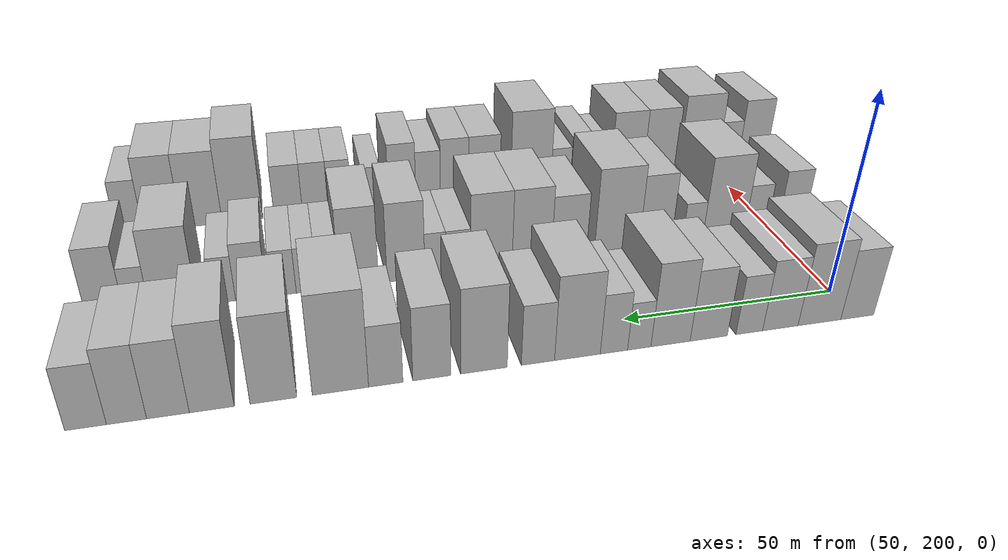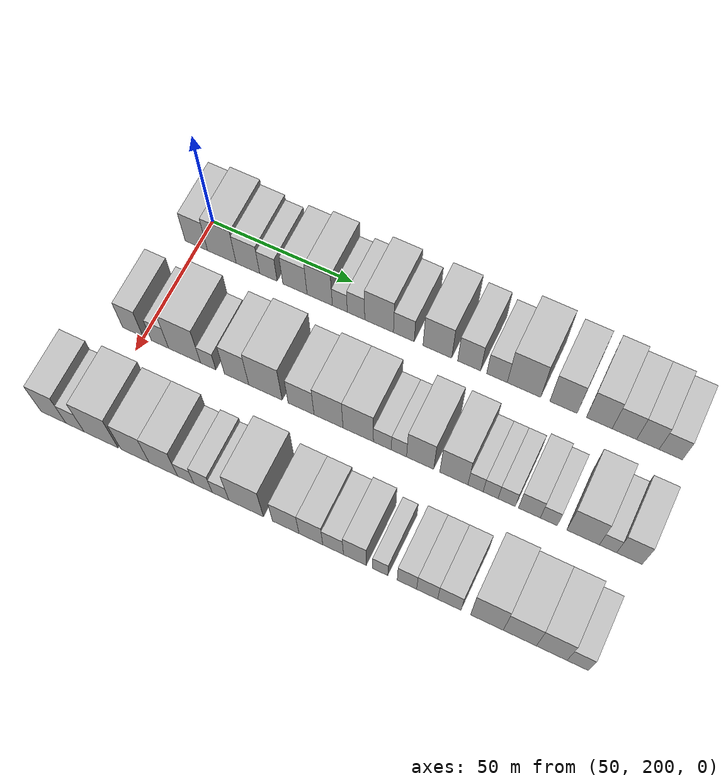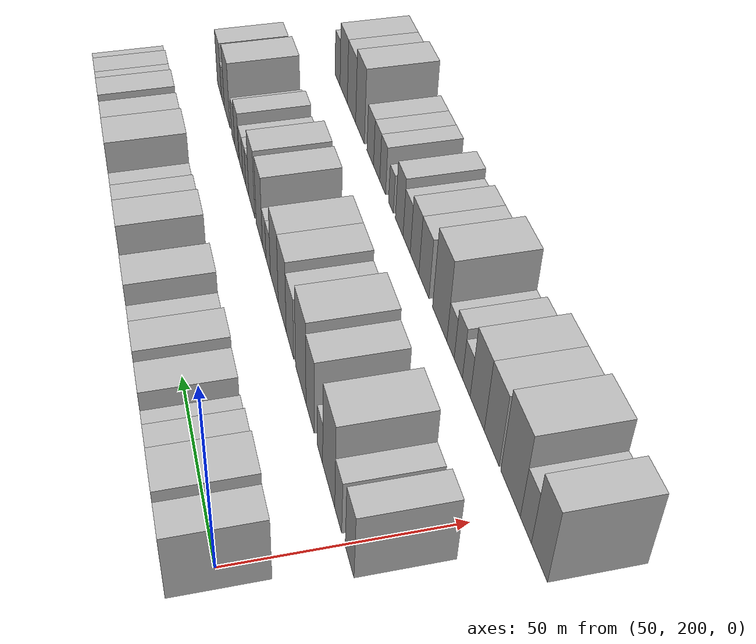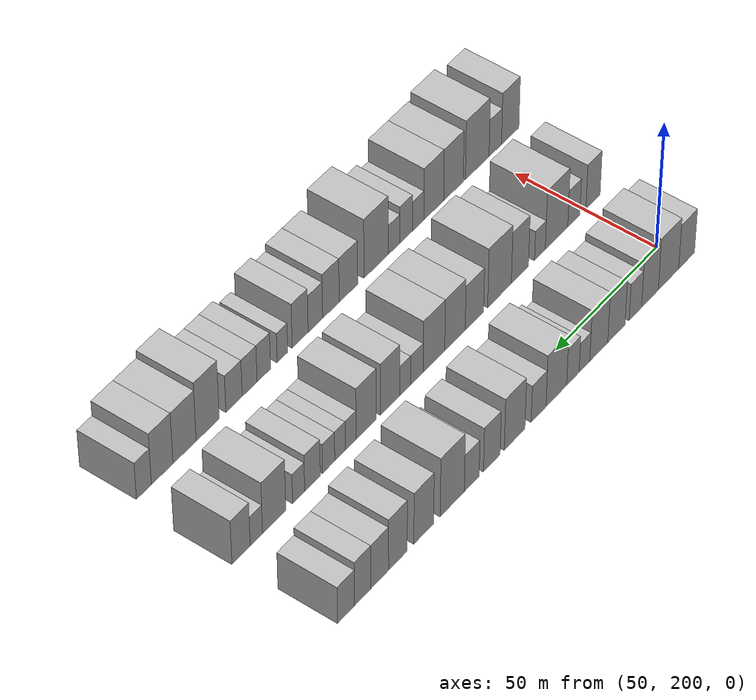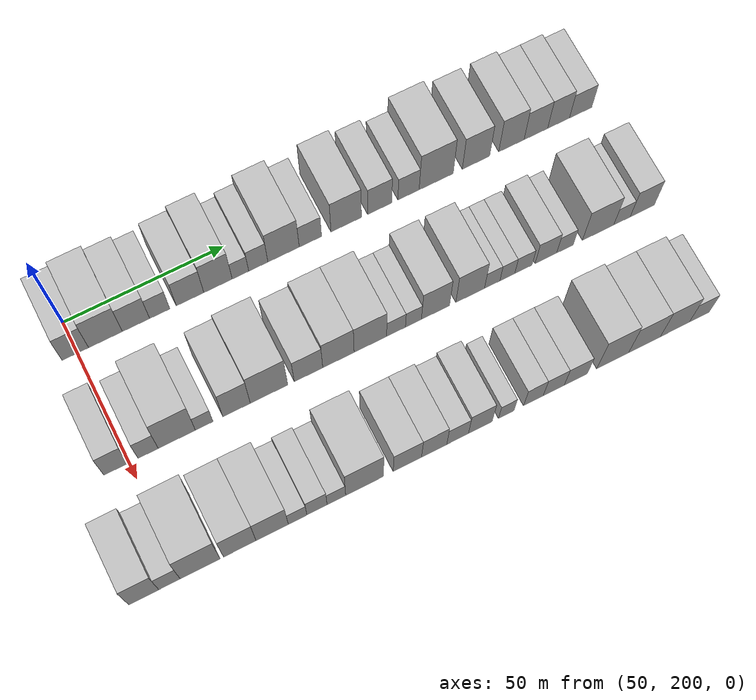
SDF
<sdf version="1.6">
 <world name="default">
  <model name="building_62">
   <static>1</static>
   <pose>50.0000 199.4339 0 0.000000 0.000000 0.000000</pose>
   <link name="link">
    <pose>0 0 9.00 0 0 0</pose>
    <collision name="collision"><geometry><box><size>20.0000 8.0856 18.0000</size></box></geometry></collision>
    <visual name="visual">
     <cast_shadows>0</cast_shadows>
     <geometry><box><size>20.0000 8.0856 18.0000</size></box></geometry>
     <material>
      <script>
       <uri>model://HANNAS_wall/materials/scripts</uri>
       <uri>model://HANNAS_wall/materials/textures</uri>
       <name>vrc/HANNAS_wall</name>
      </script>
     </material>
    </visual>
   </link>
  </model>
  <model name="building_63">
   <static>1</static>
   <pose>50.0000 208.6387 0 0.000000 0.000000 0.000000</pose>
   <link name="link">
    <pose>0 0 10.50 0 0 0</pose>
    <collision name="collision"><geometry><box><size>20.0000 10.3241 21.0000</size></box></geometry></collision>
    <visual name="visual">
     <cast_shadows>0</cast_shadows>
     <geometry><box><size>20.0000 10.3241 21.0000</size></box></geometry>
     <material>
      <script>
       <uri>model://HANNAS_wall/materials/scripts</uri>
       <uri>model://HANNAS_wall/materials/textures</uri>
       <name>vrc/HANNAS_wall</name>
      </script>
     </material>
    </visual>
   </link>
  </model>
  <model name="building_64">
   <static>1</static>
   <pose>50.0000 218.0024 0 0.000000 0.000000 0.000000</pose>
   <link name="link">
    <pose>0 0 9.00 0 0 0</pose>
    <collision name="collision"><geometry><box><size>20.0000 8.4034 18.0000</size></box></geometry></collision>
    <visual name="visual">
     <cast_shadows>0</cast_shadows>
     <geometry><box><size>20.0000 8.4034 18.0000</size></box></geometry>
     <material>
      <script>
       <uri>model://HANNAS_wall/materials/scripts</uri>
       <uri>model://HANNAS_wall/materials/textures</uri>
       <name>vrc/HANNAS_wall</name>
      </script>
     </material>
    </visual>
   </link>
  </model>
  <model name="building_65">
   <static>1</static>
   <pose>50.0000 225.3311 0 0.000000 0.000000 0.000000</pose>
   <link name="link">
    <pose>0 0 7.50 0 0 0</pose>
    <collision name="collision"><geometry><box><size>20.0000 6.2540 15.0000</size></box></geometry></collision>
    <visual name="visual">
     <cast_shadows>0</cast_shadows>
     <geometry><box><size>20.0000 6.2540 15.0000</size></box></geometry>
     <material>
      <script>
       <uri>model://HANNAS_wall/materials/scripts</uri>
       <uri>model://HANNAS_wall/materials/textures</uri>
       <name>vrc/HANNAS_wall</name>
      </script>
     </material>
    </visual>
   </link>
  </model>
  <model name="building_66">
   <static>1</static>
   <pose>50.0000 234.7401 0 0.000000 0.000000 0.000000</pose>
   <link name="link">
    <pose>0 0 9.00 0 0 0</pose>
    <collision name="collision"><geometry><box><size>20.0000 8.5640 18.0000</size></box></geometry></collision>
    <visual name="visual">
     <cast_shadows>0</cast_shadows>
     <geometry><box><size>20.0000 8.5640 18.0000</size></box></geometry>
     <material>
      <script>
       <uri>model://HANNAS_wall/materials/scripts</uri>
       <uri>model://HANNAS_wall/materials/textures</uri>
       <name>vrc/HANNAS_wall</name>
      </script>
     </material>
    </visual>
   </link>
  </model>
  <model name="building_67">
   <static>1</static>
   <pose>50.0000 243.4571 0 0.000000 0.000000 0.000000</pose>
   <link name="link">
    <pose>0 0 10.50 0 0 0</pose>
    <collision name="collision"><geometry><box><size>20.0000 8.8699 21.0000</size></box></geometry></collision>
    <visual name="visual">
     <cast_shadows>0</cast_shadows>
     <geometry><box><size>20.0000 8.8699 21.0000</size></box></geometry>
     <material>
      <script>
       <uri>model://HANNAS_wall/materials/scripts</uri>
       <uri>model://HANNAS_wall/materials/textures</uri>
       <name>vrc/HANNAS_wall</name>
      </script>
     </material>
    </visual>
   </link>
  </model>
  <model name="building_68">
   <static>1</static>
   <pose>50.0000 250.4916 0 0.000000 0.000000 0.000000</pose>
   <link name="link">
    <pose>0 0 6.00 0 0 0</pose>
    <collision name="collision"><geometry><box><size>20.0000 5.1992 12.0000</size></box></geometry></collision>
    <visual name="visual">
     <cast_shadows>0</cast_shadows>
     <geometry><box><size>20.0000 5.1992 12.0000</size></box></geometry>
     <material>
      <script>
       <uri>model://HANNAS_wall/materials/scripts</uri>
       <uri>model://HANNAS_wall/materials/textures</uri>
       <name>vrc/HANNAS_wall</name>
      </script>
     </material>
    </visual>
   </link>
  </model>
  <model name="building_69">
   <static>1</static>
   <pose>50.0000 256.1137 0 0.000000 0.000000 0.000000</pose>
   <link name="link">
    <pose>0 0 7.50 0 0 0</pose>
    <collision name="collision"><geometry><box><size>20.0000 6.0450 15.0000</size></box></geometry></collision>
    <visual name="visual">
     <cast_shadows>0</cast_shadows>
     <geometry><box><size>20.0000 6.0450 15.0000</size></box></geometry>
     <material>
      <script>
       <uri>model://HANNAS_wall/materials/scripts</uri>
       <uri>model://HANNAS_wall/materials/textures</uri>
       <name>vrc/HANNAS_wall</name>
      </script>
     </material>
    </visual>
   </link>
  </model>
  <model name="building_70">
   <static>1</static>
   <pose>50.0000 264.1032 0 0.000000 0.000000 0.000000</pose>
   <link name="link">
    <pose>0 0 10.50 0 0 0</pose>
    <collision name="collision"><geometry><box><size>20.0000 9.9339 21.0000</size></box></geometry></collision>
    <visual name="visual">
     <cast_shadows>0</cast_shadows>
     <geometry><box><size>20.0000 9.9339 21.0000</size></box></geometry>
     <material>
      <script>
       <uri>model://HANNAS_wall/materials/scripts</uri>
       <uri>model://HANNAS_wall/materials/textures</uri>
       <name>vrc/HANNAS_wall</name>
      </script>
     </material>
    </visual>
   </link>
  </model>
  <model name="building_71">
   <static>1</static>
   <pose>50.0000 272.6266 0 0.000000 0.000000 0.000000</pose>
   <link name="link">
    <pose>0 0 7.50 0 0 0</pose>
    <collision name="collision"><geometry><box><size>20.0000 7.1130 15.0000</size></box></geometry></collision>
    <visual name="visual">
     <cast_shadows>0</cast_shadows>
     <geometry><box><size>20.0000 7.1130 15.0000</size></box></geometry>
     <material>
      <script>
       <uri>model://HANNAS_wall/materials/scripts</uri>
       <uri>model://HANNAS_wall/materials/textures</uri>
       <name>vrc/HANNAS_wall</name>
      </script>
     </material>
    </visual>
   </link>
  </model>
  <model name="building_72">
   <static>1</static>
   <pose>50.0000 284.0668 0 0.000000 0.000000 0.000000</pose>
   <link name="link">
    <pose>0 0 10.50 0 0 0</pose>
    <collision name="collision"><geometry><box><size>20.0000 9.7673 21.0000</size></box></geometry></collision>
    <visual name="visual">
     <cast_shadows>0</cast_shadows>
     <geometry><box><size>20.0000 9.7673 21.0000</size></box></geometry>
     <material>
      <script>
       <uri>model://HANNAS_wall/materials/scripts</uri>
       <uri>model://HANNAS_wall/materials/textures</uri>
       <name>vrc/HANNAS_wall</name>
      </script>
     </material>
    </visual>
   </link>
  </model>
  <model name="building_73">
   <static>1</static>
   <pose>50.0000 294.8404 0 0.000000 0.000000 0.000000</pose>
   <link name="link">
    <pose>0 0 9.00 0 0 0</pose>
    <collision name="collision"><geometry><box><size>20.0000 7.7799 18.0000</size></box></geometry></collision>
    <visual name="visual">
     <cast_shadows>0</cast_shadows>
     <geometry><box><size>20.0000 7.7799 18.0000</size></box></geometry>
     <material>
      <script>
       <uri>model://HANNAS_wall/materials/scripts</uri>
       <uri>model://HANNAS_wall/materials/textures</uri>
       <name>vrc/HANNAS_wall</name>
      </script>
     </material>
    </visual>
   </link>
  </model>
  <model name="building_74">
   <static>1</static>
   <pose>50.0000 304.1834 0 0.000000 0.000000 0.000000</pose>
   <link name="link">
    <pose>0 0 7.50 0 0 0</pose>
    <collision name="collision"><geometry><box><size>20.0000 6.9059 15.0000</size></box></geometry></collision>
    <visual name="visual">
     <cast_shadows>0</cast_shadows>
     <geometry><box><size>20.0000 6.9059 15.0000</size></box></geometry>
     <material>
      <script>
       <uri>model://HANNAS_wall/materials/scripts</uri>
       <uri>model://HANNAS_wall/materials/textures</uri>
       <name>vrc/HANNAS_wall</name>
      </script>
     </material>
    </visual>
   </link>
  </model>
  <model name="building_75">
   <static>1</static>
   <pose>50.0000 313.1946 0 0.000000 0.000000 0.000000</pose>
   <link name="link">
    <pose>0 0 12.00 0 0 0</pose>
    <collision name="collision"><geometry><box><size>20.0000 11.1164 24.0000</size></box></geometry></collision>
    <visual name="visual">
     <cast_shadows>0</cast_shadows>
     <geometry><box><size>20.0000 11.1164 24.0000</size></box></geometry>
     <material>
      <script>
       <uri>model://HANNAS_wall/materials/scripts</uri>
       <uri>model://HANNAS_wall/materials/textures</uri>
       <name>vrc/HANNAS_wall</name>
      </script>
     </material>
    </visual>
   </link>
  </model>
  <model name="building_76">
   <static>1</static>
   <pose>50.0000 326.2550 0 0.000000 0.000000 0.000000</pose>
   <link name="link">
    <pose>0 0 10.50 0 0 0</pose>
    <collision name="collision"><geometry><box><size>20.0000 9.0044 21.0000</size></box></geometry></collision>
    <visual name="visual">
     <cast_shadows>0</cast_shadows>
     <geometry><box><size>20.0000 9.0044 21.0000</size></box></geometry>
     <material>
      <script>
       <uri>model://HANNAS_wall/materials/scripts</uri>
       <uri>model://HANNAS_wall/materials/textures</uri>
       <name>vrc/HANNAS_wall</name>
      </script>
     </material>
    </visual>
   </link>
  </model>
  <model name="building_77">
   <static>1</static>
   <pose>50.0000 337.9638 0 0.000000 0.000000 0.000000</pose>
   <link name="link">
    <pose>0 0 10.50 0 0 0</pose>
    <collision name="collision"><geometry><box><size>20.0000 8.4134 21.0000</size></box></geometry></collision>
    <visual name="visual">
     <cast_shadows>0</cast_shadows>
     <geometry><box><size>20.0000 8.4134 21.0000</size></box></geometry>
     <material>
      <script>
       <uri>model://HANNAS_wall/materials/scripts</uri>
       <uri>model://HANNAS_wall/materials/textures</uri>
       <name>vrc/HANNAS_wall</name>
      </script>
     </material>
    </visual>
   </link>
  </model>
  <model name="building_78">
   <static>1</static>
   <pose>50.0000 346.1105 0 0.000000 0.000000 0.000000</pose>
   <link name="link">
    <pose>0 0 9.00 0 0 0</pose>
    <collision name="collision"><geometry><box><size>20.0000 7.8799 18.0000</size></box></geometry></collision>
    <visual name="visual">
     <cast_shadows>0</cast_shadows>
     <geometry><box><size>20.0000 7.8799 18.0000</size></box></geometry>
     <material>
      <script>
       <uri>model://HANNAS_wall/materials/scripts</uri>
       <uri>model://HANNAS_wall/materials/textures</uri>
       <name>vrc/HANNAS_wall</name>
      </script>
     </material>
    </visual>
   </link>
  </model>
  <model name="building_79">
   <static>1</static>
   <pose>50.0000 353.6917 0 0.000000 0.000000 0.000000</pose>
   <link name="link">
    <pose>0 0 9.00 0 0 0</pose>
    <collision name="collision"><geometry><box><size>20.0000 7.2826 18.0000</size></box></geometry></collision>
    <visual name="visual">
     <cast_shadows>0</cast_shadows>
     <geometry><box><size>20.0000 7.2826 18.0000</size></box></geometry>
     <material>
      <script>
       <uri>model://HANNAS_wall/materials/scripts</uri>
       <uri>model://HANNAS_wall/materials/textures</uri>
       <name>vrc/HANNAS_wall</name>
      </script>
     </material>
    </visual>
   </link>
  </model>
  <model name="building_80">
   <static>1</static>
   <pose>50.0000 361.0742 0 0.000000 0.000000 0.000000</pose>
   <link name="link">
    <pose>0 0 7.50 0 0 0</pose>
    <collision name="collision"><geometry><box><size>20.0000 7.4824 15.0000</size></box></geometry></collision>
    <visual name="visual">
     <cast_shadows>0</cast_shadows>
     <geometry><box><size>20.0000 7.4824 15.0000</size></box></geometry>
     <material>
      <script>
       <uri>model://HANNAS_wall/materials/scripts</uri>
       <uri>model://HANNAS_wall/materials/textures</uri>
       <name>vrc/HANNAS_wall</name>
      </script>
     </material>
    </visual>
   </link>
  </model>
  <model name="building_143">
   <static>1</static>
   <pose>85.0000 196.0362 0 0.000000 0.000000 0.000000</pose>
   <link name="link">
    <pose>0 0 9.00 0 0 0</pose>
    <collision name="collision"><geometry><box><size>20.0000 7.2174 18.0000</size></box></geometry></collision>
    <visual name="visual">
     <cast_shadows>0</cast_shadows>
     <geometry><box><size>20.0000 7.2174 18.0000</size></box></geometry>
     <material>
      <script>
       <uri>model://HANNAS_wall/materials/scripts</uri>
       <uri>model://HANNAS_wall/materials/textures</uri>
       <name>vrc/HANNAS_wall</name>
      </script>
     </material>
    </visual>
   </link>
  </model>
  <model name="building_144">
   <static>1</static>
   <pose>85.0000 205.6955 0 0.000000 0.000000 0.000000</pose>
   <link name="link">
    <pose>0 0 7.50 0 0 0</pose>
    <collision name="collision"><geometry><box><size>20.0000 6.1010 15.0000</size></box></geometry></collision>
    <visual name="visual">
     <cast_shadows>0</cast_shadows>
     <geometry><box><size>20.0000 6.1010 15.0000</size></box></geometry>
     <material>
      <script>
       <uri>model://HANNAS_wall/materials/scripts</uri>
       <uri>model://HANNAS_wall/materials/textures</uri>
       <name>vrc/HANNAS_wall</name>
      </script>
     </material>
    </visual>
   </link>
  </model>
  <model name="building_145">
   <static>1</static>
   <pose>85.0000 214.3514 0 0.000000 0.000000 0.000000</pose>
   <link name="link">
    <pose>0 0 12.00 0 0 0</pose>
    <collision name="collision"><geometry><box><size>20.0000 11.2107 24.0000</size></box></geometry></collision>
    <visual name="visual">
     <cast_shadows>0</cast_shadows>
     <geometry><box><size>20.0000 11.2107 24.0000</size></box></geometry>
     <material>
      <script>
       <uri>model://HANNAS_wall/materials/scripts</uri>
       <uri>model://HANNAS_wall/materials/textures</uri>
       <name>vrc/HANNAS_wall</name>
      </script>
     </material>
    </visual>
   </link>
  </model>
  <model name="building_146">
   <static>1</static>
   <pose>85.0000 222.6321 0 0.000000 0.000000 0.000000</pose>
   <link name="link">
    <pose>0 0 6.00 0 0 0</pose>
    <collision name="collision"><geometry><box><size>20.0000 5.3507 12.0000</size></box></geometry></collision>
    <visual name="visual">
     <cast_shadows>0</cast_shadows>
     <geometry><box><size>20.0000 5.3507 12.0000</size></box></geometry>
     <material>
      <script>
       <uri>model://HANNAS_wall/materials/scripts</uri>
       <uri>model://HANNAS_wall/materials/textures</uri>
       <name>vrc/HANNAS_wall</name>
      </script>
     </material>
    </visual>
   </link>
  </model>
  <model name="building_147">
   <static>1</static>
   <pose>85.0000 232.5090 0 0.000000 0.000000 0.000000</pose>
   <link name="link">
    <pose>0 0 10.50 0 0 0</pose>
    <collision name="collision"><geometry><box><size>20.0000 8.4032 21.0000</size></box></geometry></collision>
    <visual name="visual">
     <cast_shadows>0</cast_shadows>
     <geometry><box><size>20.0000 8.4032 21.0000</size></box></geometry>
     <material>
      <script>
       <uri>model://HANNAS_wall/materials/scripts</uri>
       <uri>model://HANNAS_wall/materials/textures</uri>
       <name>vrc/HANNAS_wall</name>
      </script>
     </material>
    </visual>
   </link>
  </model>
  <model name="building_148">
   <static>1</static>
   <pose>85.0000 242.4690 0 0.000000 0.000000 0.000000</pose>
   <link name="link">
    <pose>0 0 12.00 0 0 0</pose>
    <collision name="collision"><geometry><box><size>20.0000 11.5169 24.0000</size></box></geometry></collision>
    <visual name="visual">
     <cast_shadows>0</cast_shadows>
     <geometry><box><size>20.0000 11.5169 24.0000</size></box></geometry>
     <material>
      <script>
       <uri>model://HANNAS_wall/materials/scripts</uri>
       <uri>model://HANNAS_wall/materials/textures</uri>
       <name>vrc/HANNAS_wall</name>
      </script>
     </material>
    </visual>
   </link>
  </model>
  <model name="building_149">
   <static>1</static>
   <pose>85.0000 254.6485 0 0.000000 0.000000 0.000000</pose>
   <link name="link">
    <pose>0 0 9.00 0 0 0</pose>
    <collision name="collision"><geometry><box><size>20.0000 8.8421 18.0000</size></box></geometry></collision>
    <visual name="visual">
     <cast_shadows>0</cast_shadows>
     <geometry><box><size>20.0000 8.8421 18.0000</size></box></geometry>
     <material>
      <script>
       <uri>model://HANNAS_wall/materials/scripts</uri>
       <uri>model://HANNAS_wall/materials/textures</uri>
       <name>vrc/HANNAS_wall</name>
      </script>
     </material>
    </visual>
   </link>
  </model>
  <model name="building_150">
   <static>1</static>
   <pose>85.0000 263.9497 0 0.000000 0.000000 0.000000</pose>
   <link name="link">
    <pose>0 0 10.50 0 0 0</pose>
    <collision name="collision"><geometry><box><size>20.0000 9.7602 21.0000</size></box></geometry></collision>
    <visual name="visual">
     <cast_shadows>0</cast_shadows>
     <geometry><box><size>20.0000 9.7602 21.0000</size></box></geometry>
     <material>
      <script>
       <uri>model://HANNAS_wall/materials/scripts</uri>
       <uri>model://HANNAS_wall/materials/textures</uri>
       <name>vrc/HANNAS_wall</name>
      </script>
     </material>
    </visual>
   </link>
  </model>
  <model name="building_151">
   <static>1</static>
   <pose>85.0000 273.9224 0 0.000000 0.000000 0.000000</pose>
   <link name="link">
    <pose>0 0 10.50 0 0 0</pose>
    <collision name="collision"><geometry><box><size>20.0000 10.1851 21.0000</size></box></geometry></collision>
    <visual name="visual">
     <cast_shadows>0</cast_shadows>
     <geometry><box><size>20.0000 10.1851 21.0000</size></box></geometry>
     <material>
      <script>
       <uri>model://HANNAS_wall/materials/scripts</uri>
       <uri>model://HANNAS_wall/materials/textures</uri>
       <name>vrc/HANNAS_wall</name>
      </script>
     </material>
    </visual>
   </link>
  </model>
  <model name="building_152">
   <static>1</static>
   <pose>85.0000 281.9936 0 0.000000 0.000000 0.000000</pose>
   <link name="link">
    <pose>0 0 6.00 0 0 0</pose>
    <collision name="collision"><geometry><box><size>20.0000 5.9573 12.0000</size></box></geometry></collision>
    <visual name="visual">
     <cast_shadows>0</cast_shadows>
     <geometry><box><size>20.0000 5.9573 12.0000</size></box></geometry>
     <material>
      <script>
       <uri>model://HANNAS_wall/materials/scripts</uri>
       <uri>model://HANNAS_wall/materials/textures</uri>
       <name>vrc/HANNAS_wall</name>
      </script>
     </material>
    </visual>
   </link>
  </model>
  <model name="building_153">
   <static>1</static>
   <pose>85.0000 287.4957 0 0.000000 0.000000 0.000000</pose>
   <link name="link">
    <pose>0 0 6.00 0 0 0</pose>
    <collision name="collision"><geometry><box><size>20.0000 5.0468 12.0000</size></box></geometry></collision>
    <visual name="visual">
     <cast_shadows>0</cast_shadows>
     <geometry><box><size>20.0000 5.0468 12.0000</size></box></geometry>
     <material>
      <script>
       <uri>model://HANNAS_wall/materials/scripts</uri>
       <uri>model://HANNAS_wall/materials/textures</uri>
       <name>vrc/HANNAS_wall</name>
      </script>
     </material>
    </visual>
   </link>
  </model>
  <model name="building_154">
   <static>1</static>
   <pose>85.0000 294.4958 0 0.000000 0.000000 0.000000</pose>
   <link name="link">
    <pose>0 0 10.50 0 0 0</pose>
    <collision name="collision"><geometry><box><size>20.0000 8.9534 21.0000</size></box></geometry></collision>
    <visual name="visual">
     <cast_shadows>0</cast_shadows>
     <geometry><box><size>20.0000 8.9534 21.0000</size></box></geometry>
     <material>
      <script>
       <uri>model://HANNAS_wall/materials/scripts</uri>
       <uri>model://HANNAS_wall/materials/textures</uri>
       <name>vrc/HANNAS_wall</name>
      </script>
     </material>
    </visual>
   </link>
  </model>
  <model name="building_155">
   <static>1</static>
   <pose>85.0000 305.5621 0 0.000000 0.000000 0.000000</pose>
   <link name="link">
    <pose>0 0 10.50 0 0 0</pose>
    <collision name="collision"><geometry><box><size>20.0000 9.1791 21.0000</size></box></geometry></collision>
    <visual name="visual">
     <cast_shadows>0</cast_shadows>
     <geometry><box><size>20.0000 9.1791 21.0000</size></box></geometry>
     <material>
      <script>
       <uri>model://HANNAS_wall/materials/scripts</uri>
       <uri>model://HANNAS_wall/materials/textures</uri>
       <name>vrc/HANNAS_wall</name>
      </script>
     </material>
    </visual>
   </link>
  </model>
  <model name="building_156">
   <static>1</static>
   <pose>85.0000 312.6324 0 0.000000 0.000000 0.000000</pose>
   <link name="link">
    <pose>0 0 6.00 0 0 0</pose>
    <collision name="collision"><geometry><box><size>20.0000 4.9616 12.0000</size></box></geometry></collision>
    <visual name="visual">
     <cast_shadows>0</cast_shadows>
     <geometry><box><size>20.0000 4.9616 12.0000</size></box></geometry>
     <material>
      <script>
       <uri>model://HANNAS_wall/materials/scripts</uri>
       <uri>model://HANNAS_wall/materials/textures</uri>
       <name>vrc/HANNAS_wall</name>
      </script>
     </material>
    </visual>
   </link>
  </model>
  <model name="building_157">
   <static>1</static>
   <pose>85.0000 317.5183 0 0.000000 0.000000 0.000000</pose>
   <link name="link">
    <pose>0 0 6.00 0 0 0</pose>
    <collision name="collision"><geometry><box><size>20.0000 4.8101 12.0000</size></box></geometry></collision>
    <visual name="visual">
     <cast_shadows>0</cast_shadows>
     <geometry><box><size>20.0000 4.8101 12.0000</size></box></geometry>
     <material>
      <script>
       <uri>model://HANNAS_wall/materials/scripts</uri>
       <uri>model://HANNAS_wall/materials/textures</uri>
       <name>vrc/HANNAS_wall</name>
      </script>
     </material>
    </visual>
   </link>
  </model>
  <model name="building_158">
   <static>1</static>
   <pose>85.0000 322.7087 0 0.000000 0.000000 0.000000</pose>
   <link name="link">
    <pose>0 0 6.00 0 0 0</pose>
    <collision name="collision"><geometry><box><size>20.0000 5.5708 12.0000</size></box></geometry></collision>
    <visual name="visual">
     <cast_shadows>0</cast_shadows>
     <geometry><box><size>20.0000 5.5708 12.0000</size></box></geometry>
     <material>
      <script>
       <uri>model://HANNAS_wall/materials/scripts</uri>
       <uri>model://HANNAS_wall/materials/textures</uri>
       <name>vrc/HANNAS_wall</name>
      </script>
     </material>
    </visual>
   </link>
  </model>
  <model name="building_159">
   <static>1</static>
   <pose>85.0000 330.0045 0 0.000000 0.000000 0.000000</pose>
   <link name="link">
    <pose>0 0 7.50 0 0 0</pose>
    <collision name="collision"><geometry><box><size>20.0000 7.0209 15.0000</size></box></geometry></collision>
    <visual name="visual">
     <cast_shadows>0</cast_shadows>
     <geometry><box><size>20.0000 7.0209 15.0000</size></box></geometry>
     <material>
      <script>
       <uri>model://HANNAS_wall/materials/scripts</uri>
       <uri>model://HANNAS_wall/materials/textures</uri>
       <name>vrc/HANNAS_wall</name>
      </script>
     </material>
    </visual>
   </link>
  </model>
  <model name="building_160">
   <static>1</static>
   <pose>85.0000 336.2128 0 0.000000 0.000000 0.000000</pose>
   <link name="link">
    <pose>0 0 6.00 0 0 0</pose>
    <collision name="collision"><geometry><box><size>20.0000 5.3957 12.0000</size></box></geometry></collision>
    <visual name="visual">
     <cast_shadows>0</cast_shadows>
     <geometry><box><size>20.0000 5.3957 12.0000</size></box></geometry>
     <material>
      <script>
       <uri>model://HANNAS_wall/materials/scripts</uri>
       <uri>model://HANNAS_wall/materials/textures</uri>
       <name>vrc/HANNAS_wall</name>
      </script>
     </material>
    </visual>
   </link>
  </model>
  <model name="building_161">
   <static>1</static>
   <pose>85.0000 347.0623 0 0.000000 0.000000 0.000000</pose>
   <link name="link">
    <pose>0 0 10.50 0 0 0</pose>
    <collision name="collision"><geometry><box><size>20.0000 10.3032 21.0000</size></box></geometry></collision>
    <visual name="visual">
     <cast_shadows>0</cast_shadows>
     <geometry><box><size>20.0000 10.3032 21.0000</size></box></geometry>
     <material>
      <script>
       <uri>model://HANNAS_wall/materials/scripts</uri>
       <uri>model://HANNAS_wall/materials/textures</uri>
       <name>vrc/HANNAS_wall</name>
      </script>
     </material>
    </visual>
   </link>
  </model>
  <model name="building_162">
   <static>1</static>
   <pose>85.0000 354.9226 0 0.000000 0.000000 0.000000</pose>
   <link name="link">
    <pose>0 0 6.00 0 0 0</pose>
    <collision name="collision"><geometry><box><size>20.0000 5.4174 12.0000</size></box></geometry></collision>
    <visual name="visual">
     <cast_shadows>0</cast_shadows>
     <geometry><box><size>20.0000 5.4174 12.0000</size></box></geometry>
     <material>
      <script>
       <uri>model://HANNAS_wall/materials/scripts</uri>
       <uri>model://HANNAS_wall/materials/textures</uri>
       <name>vrc/HANNAS_wall</name>
      </script>
     </material>
    </visual>
   </link>
  </model>
  <model name="building_163">
   <static>1</static>
   <pose>85.0000 361.6230 0 0.000000 0.000000 0.000000</pose>
   <link name="link">
    <pose>0 0 9.00 0 0 0</pose>
    <collision name="collision"><geometry><box><size>20.0000 7.9835 18.0000</size></box></geometry></collision>
    <visual name="visual">
     <cast_shadows>0</cast_shadows>
     <geometry><box><size>20.0000 7.9835 18.0000</size></box></geometry>
     <material>
      <script>
       <uri>model://HANNAS_wall/materials/scripts</uri>
       <uri>model://HANNAS_wall/materials/textures</uri>
       <name>vrc/HANNAS_wall</name>
      </script>
     </material>
    </visual>
   </link>
  </model>
  <model name="building_223">
   <static>1</static>
   <pose>120.0000 188.3859 0 0.000000 0.000000 0.000000</pose>
   <link name="link">
    <pose>0 0 10.50 0 0 0</pose>
    <collision name="collision"><geometry><box><size>20.0000 8.7671 21.0000</size></box></geometry></collision>
    <visual name="visual">
     <cast_shadows>0</cast_shadows>
     <geometry><box><size>20.0000 8.7671 21.0000</size></box></geometry>
     <material>
      <script>
       <uri>model://HANNAS_wall/materials/scripts</uri>
       <uri>model://HANNAS_wall/materials/textures</uri>
       <name>vrc/HANNAS_wall</name>
      </script>
     </material>
    </visual>
   </link>
  </model>
  <model name="building_224">
   <static>1</static>
   <pose>120.0000 195.9147 0 0.000000 0.000000 0.000000</pose>
   <link name="link">
    <pose>0 0 7.50 0 0 0</pose>
    <collision name="collision"><geometry><box><size>20.0000 6.2905 15.0000</size></box></geometry></collision>
    <visual name="visual">
     <cast_shadows>0</cast_shadows>
     <geometry><box><size>20.0000 6.2905 15.0000</size></box></geometry>
     <material>
      <script>
       <uri>model://HANNAS_wall/materials/scripts</uri>
       <uri>model://HANNAS_wall/materials/textures</uri>
       <name>vrc/HANNAS_wall</name>
      </script>
     </material>
    </visual>
   </link>
  </model>
  <model name="building_225">
   <static>1</static>
   <pose>120.0000 204.9559 0 0.000000 0.000000 0.000000</pose>
   <link name="link">
    <pose>0 0 12.00 0 0 0</pose>
    <collision name="collision"><geometry><box><size>20.0000 11.7918 24.0000</size></box></geometry></collision>
    <visual name="visual">
     <cast_shadows>0</cast_shadows>
     <geometry><box><size>20.0000 11.7918 24.0000</size></box></geometry>
     <material>
      <script>
       <uri>model://HANNAS_wall/materials/scripts</uri>
       <uri>model://HANNAS_wall/materials/textures</uri>
       <name>vrc/HANNAS_wall</name>
      </script>
     </material>
    </visual>
   </link>
  </model>
  <model name="building_226">
   <static>1</static>
   <pose>120.0000 216.6866 0 0.000000 0.000000 0.000000</pose>
   <link name="link">
    <pose>0 0 10.50 0 0 0</pose>
    <collision name="collision"><geometry><box><size>20.0000 9.6697 21.0000</size></box></geometry></collision>
    <visual name="visual">
     <cast_shadows>0</cast_shadows>
     <geometry><box><size>20.0000 9.6697 21.0000</size></box></geometry>
     <material>
      <script>
       <uri>model://HANNAS_wall/materials/scripts</uri>
       <uri>model://HANNAS_wall/materials/textures</uri>
       <name>vrc/HANNAS_wall</name>
      </script>
     </material>
    </visual>
   </link>
  </model>
  <model name="building_227">
   <static>1</static>
   <pose>120.0000 226.3587 0 0.000000 0.000000 0.000000</pose>
   <link name="link">
    <pose>0 0 10.50 0 0 0</pose>
    <collision name="collision"><geometry><box><size>20.0000 9.6745 21.0000</size></box></geometry></collision>
    <visual name="visual">
     <cast_shadows>0</cast_shadows>
     <geometry><box><size>20.0000 9.6745 21.0000</size></box></geometry>
     <material>
      <script>
       <uri>model://HANNAS_wall/materials/scripts</uri>
       <uri>model://HANNAS_wall/materials/textures</uri>
       <name>vrc/HANNAS_wall</name>
      </script>
     </material>
    </visual>
   </link>
  </model>
  <model name="building_228">
   <static>1</static>
   <pose>120.0000 233.9906 0 0.000000 0.000000 0.000000</pose>
   <link name="link">
    <pose>0 0 6.00 0 0 0</pose>
    <collision name="collision"><geometry><box><size>20.0000 5.5893 12.0000</size></box></geometry></collision>
    <visual name="visual">
     <cast_shadows>0</cast_shadows>
     <geometry><box><size>20.0000 5.5893 12.0000</size></box></geometry>
     <material>
      <script>
       <uri>model://HANNAS_wall/materials/scripts</uri>
       <uri>model://HANNAS_wall/materials/textures</uri>
       <name>vrc/HANNAS_wall</name>
      </script>
     </material>
    </visual>
   </link>
  </model>
  <model name="building_229">
   <static>1</static>
   <pose>120.0000 239.8373 0 0.000000 0.000000 0.000000</pose>
   <link name="link">
    <pose>0 0 7.50 0 0 0</pose>
    <collision name="collision"><geometry><box><size>20.0000 6.1040 15.0000</size></box></geometry></collision>
    <visual name="visual">
     <cast_shadows>0</cast_shadows>
     <geometry><box><size>20.0000 6.1040 15.0000</size></box></geometry>
     <material>
      <script>
       <uri>model://HANNAS_wall/materials/scripts</uri>
       <uri>model://HANNAS_wall/materials/textures</uri>
       <name>vrc/HANNAS_wall</name>
      </script>
     </material>
    </visual>
   </link>
  </model>
  <model name="building_230">
   <static>1</static>
   <pose>120.0000 245.6949 0 0.000000 0.000000 0.000000</pose>
   <link name="link">
    <pose>0 0 6.00 0 0 0</pose>
    <collision name="collision"><geometry><box><size>20.0000 5.6112 12.0000</size></box></geometry></collision>
    <visual name="visual">
     <cast_shadows>0</cast_shadows>
     <geometry><box><size>20.0000 5.6112 12.0000</size></box></geometry>
     <material>
      <script>
       <uri>model://HANNAS_wall/materials/scripts</uri>
       <uri>model://HANNAS_wall/materials/textures</uri>
       <name>vrc/HANNAS_wall</name>
      </script>
     </material>
    </visual>
   </link>
  </model>
  <model name="building_231">
   <static>1</static>
   <pose>120.0000 254.2475 0 0.000000 0.000000 0.000000</pose>
   <link name="link">
    <pose>0 0 12.00 0 0 0</pose>
    <collision name="collision"><geometry><box><size>20.0000 11.4940 24.0000</size></box></geometry></collision>
    <visual name="visual">
     <cast_shadows>0</cast_shadows>
     <geometry><box><size>20.0000 11.4940 24.0000</size></box></geometry>
     <material>
      <script>
       <uri>model://HANNAS_wall/materials/scripts</uri>
       <uri>model://HANNAS_wall/materials/textures</uri>
       <name>vrc/HANNAS_wall</name>
      </script>
     </material>
    </visual>
   </link>
  </model>
  <model name="building_232">
   <static>1</static>
   <pose>120.0000 267.3554 0 0.000000 0.000000 0.000000</pose>
   <link name="link">
    <pose>0 0 9.00 0 0 0</pose>
    <collision name="collision"><geometry><box><size>20.0000 8.7217 18.0000</size></box></geometry></collision>
    <visual name="visual">
     <cast_shadows>0</cast_shadows>
     <geometry><box><size>20.0000 8.7217 18.0000</size></box></geometry>
     <material>
      <script>
       <uri>model://HANNAS_wall/materials/scripts</uri>
       <uri>model://HANNAS_wall/materials/textures</uri>
       <name>vrc/HANNAS_wall</name>
      </script>
     </material>
    </visual>
   </link>
  </model>
  <model name="building_233">
   <static>1</static>
   <pose>120.0000 275.6116 0 0.000000 0.000000 0.000000</pose>
   <link name="link">
    <pose>0 0 9.00 0 0 0</pose>
    <collision name="collision"><geometry><box><size>20.0000 7.7907 18.0000</size></box></geometry></collision>
    <visual name="visual">
     <cast_shadows>0</cast_shadows>
     <geometry><box><size>20.0000 7.7907 18.0000</size></box></geometry>
     <material>
      <script>
       <uri>model://HANNAS_wall/materials/scripts</uri>
       <uri>model://HANNAS_wall/materials/textures</uri>
       <name>vrc/HANNAS_wall</name>
      </script>
     </material>
    </visual>
   </link>
  </model>
  <model name="building_234">
   <static>1</static>
   <pose>120.0000 282.8680 0 0.000000 0.000000 0.000000</pose>
   <link name="link">
    <pose>0 0 7.50 0 0 0</pose>
    <collision name="collision"><geometry><box><size>20.0000 6.7222 15.0000</size></box></geometry></collision>
    <visual name="visual">
     <cast_shadows>0</cast_shadows>
     <geometry><box><size>20.0000 6.7222 15.0000</size></box></geometry>
     <material>
      <script>
       <uri>model://HANNAS_wall/materials/scripts</uri>
       <uri>model://HANNAS_wall/materials/textures</uri>
       <name>vrc/HANNAS_wall</name>
      </script>
     </material>
    </visual>
   </link>
  </model>
  <model name="building_235">
   <static>1</static>
   <pose>120.0000 289.9289 0 0.000000 0.000000 0.000000</pose>
   <link name="link">
    <pose>0 0 9.00 0 0 0</pose>
    <collision name="collision"><geometry><box><size>20.0000 7.3997 18.0000</size></box></geometry></collision>
    <visual name="visual">
     <cast_shadows>0</cast_shadows>
     <geometry><box><size>20.0000 7.3997 18.0000</size></box></geometry>
     <material>
      <script>
       <uri>model://HANNAS_wall/materials/scripts</uri>
       <uri>model://HANNAS_wall/materials/textures</uri>
       <name>vrc/HANNAS_wall</name>
      </script>
     </material>
    </visual>
   </link>
  </model>
  <model name="building_236">
   <static>1</static>
   <pose>120.0000 298.0677 0 0.000000 0.000000 0.000000</pose>
   <link name="link">
    <pose>0 0 6.00 0 0 0</pose>
    <collision name="collision"><geometry><box><size>20.0000 4.8778 12.0000</size></box></geometry></collision>
    <visual name="visual">
     <cast_shadows>0</cast_shadows>
     <geometry><box><size>20.0000 4.8778 12.0000</size></box></geometry>
     <material>
      <script>
       <uri>model://HANNAS_wall/materials/scripts</uri>
       <uri>model://HANNAS_wall/materials/textures</uri>
       <name>vrc/HANNAS_wall</name>
      </script>
     </material>
    </visual>
   </link>
  </model>
  <model name="building_237">
   <static>1</static>
   <pose>120.0000 306.5909 0 0.000000 0.000000 0.000000</pose>
   <link name="link">
    <pose>0 0 7.50 0 0 0</pose>
    <collision name="collision"><geometry><box><size>20.0000 6.1687 15.0000</size></box></geometry></collision>
    <visual name="visual">
     <cast_shadows>0</cast_shadows>
     <geometry><box><size>20.0000 6.1687 15.0000</size></box></geometry>
     <material>
      <script>
       <uri>model://HANNAS_wall/materials/scripts</uri>
       <uri>model://HANNAS_wall/materials/textures</uri>
       <name>vrc/HANNAS_wall</name>
      </script>
     </material>
    </visual>
   </link>
  </model>
  <model name="building_238">
   <static>1</static>
   <pose>120.0000 313.0199 0 0.000000 0.000000 0.000000</pose>
   <link name="link">
    <pose>0 0 7.50 0 0 0</pose>
    <collision name="collision"><geometry><box><size>20.0000 6.6891 15.0000</size></box></geometry></collision>
    <visual name="visual">
     <cast_shadows>0</cast_shadows>
     <geometry><box><size>20.0000 6.6891 15.0000</size></box></geometry>
     <material>
      <script>
       <uri>model://HANNAS_wall/materials/scripts</uri>
       <uri>model://HANNAS_wall/materials/textures</uri>
       <name>vrc/HANNAS_wall</name>
      </script>
     </material>
    </visual>
   </link>
  </model>
  <model name="building_239">
   <static>1</static>
   <pose>120.0000 320.0421 0 0.000000 0.000000 0.000000</pose>
   <link name="link">
    <pose>0 0 7.50 0 0 0</pose>
    <collision name="collision"><geometry><box><size>20.0000 7.3555 15.0000</size></box></geometry></collision>
    <visual name="visual">
     <cast_shadows>0</cast_shadows>
     <geometry><box><size>20.0000 7.3555 15.0000</size></box></geometry>
     <material>
      <script>
       <uri>model://HANNAS_wall/materials/scripts</uri>
       <uri>model://HANNAS_wall/materials/textures</uri>
       <name>vrc/HANNAS_wall</name>
      </script>
     </material>
    </visual>
   </link>
  </model>
  <model name="building_240">
   <static>1</static>
   <pose>120.0000 331.8361 0 0.000000 0.000000 0.000000</pose>
   <link name="link">
    <pose>0 0 12.00 0 0 0</pose>
    <collision name="collision"><geometry><box><size>20.0000 10.2324 24.0000</size></box></geometry></collision>
    <visual name="visual">
     <cast_shadows>0</cast_shadows>
     <geometry><box><size>20.0000 10.2324 24.0000</size></box></geometry>
     <material>
      <script>
       <uri>model://HANNAS_wall/materials/scripts</uri>
       <uri>model://HANNAS_wall/materials/textures</uri>
       <name>vrc/HANNAS_wall</name>
      </script>
     </material>
    </visual>
   </link>
  </model>
  <model name="building_241">
   <static>1</static>
   <pose>120.0000 342.0730 0 0.000000 0.000000 0.000000</pose>
   <link name="link">
    <pose>0 0 10.50 0 0 0</pose>
    <collision name="collision"><geometry><box><size>20.0000 10.2414 21.0000</size></box></geometry></collision>
    <visual name="visual">
     <cast_shadows>0</cast_shadows>
     <geometry><box><size>20.0000 10.2414 21.0000</size></box></geometry>
     <material>
      <script>
       <uri>model://HANNAS_wall/materials/scripts</uri>
       <uri>model://HANNAS_wall/materials/textures</uri>
       <name>vrc/HANNAS_wall</name>
      </script>
     </material>
    </visual>
   </link>
  </model>
  <model name="building_242">
   <static>1</static>
   <pose>120.0000 351.9012 0 0.000000 0.000000 0.000000</pose>
   <link name="link">
    <pose>0 0 10.50 0 0 0</pose>
    <collision name="collision"><geometry><box><size>20.0000 9.4149 21.0000</size></box></geometry></collision>
    <visual name="visual">
     <cast_shadows>0</cast_shadows>
     <geometry><box><size>20.0000 9.4149 21.0000</size></box></geometry>
     <material>
      <script>
       <uri>model://HANNAS_wall/materials/scripts</uri>
       <uri>model://HANNAS_wall/materials/textures</uri>
       <name>vrc/HANNAS_wall</name>
      </script>
     </material>
    </visual>
   </link>
  </model>
  <model name="building_243">
   <static>1</static>
   <pose>120.0000 359.8546 0 0.000000 0.000000 0.000000</pose>
   <link name="link">
    <pose>0 0 7.50 0 0 0</pose>
    <collision name="collision"><geometry><box><size>20.0000 6.4919 15.0000</size></box></geometry></collision>
    <visual name="visual">
     <cast_shadows>0</cast_shadows>
     <geometry><box><size>20.0000 6.4919 15.0000</size></box></geometry>
     <material>
      <script>
       <uri>model://HANNAS_wall/materials/scripts</uri>
       <uri>model://HANNAS_wall/materials/textures</uri>
       <name>vrc/HANNAS_wall</name>
      </script>
     </material>
    </visual>
   </link>
  </model>
 </world>
</sdf>
